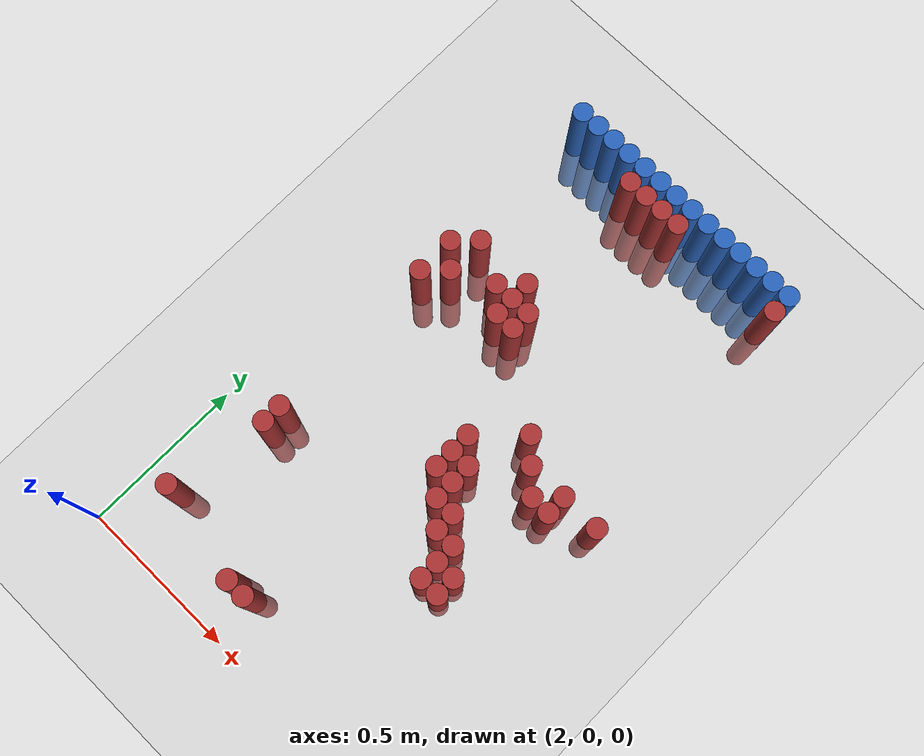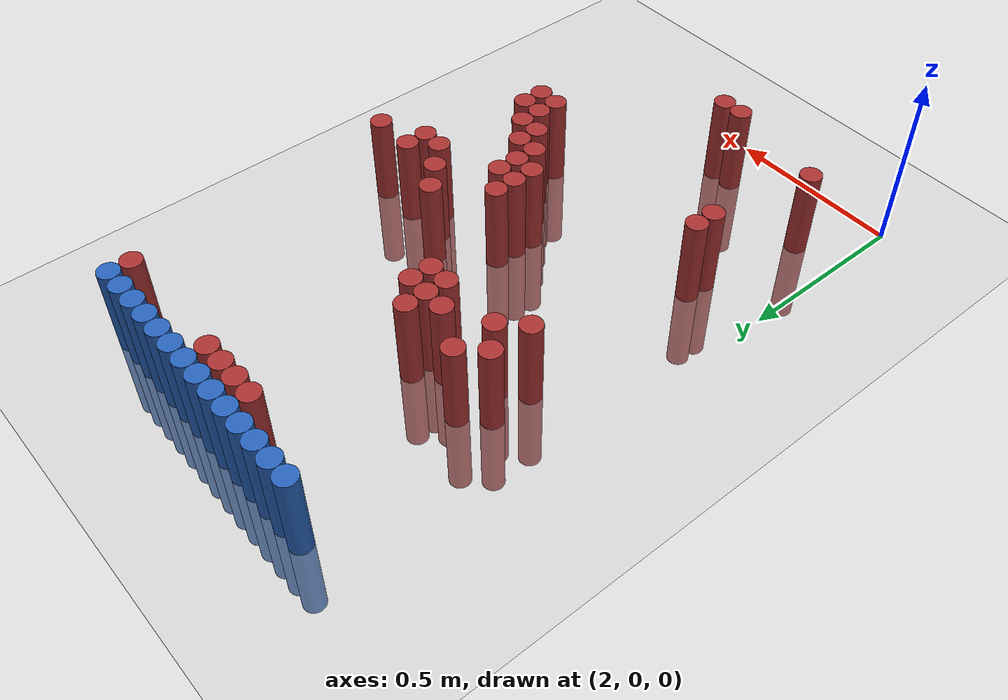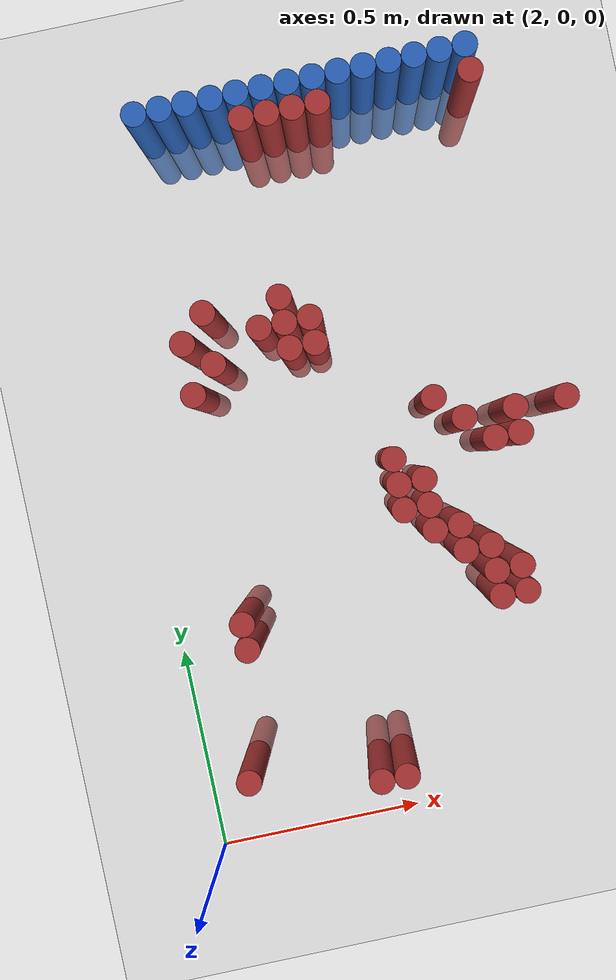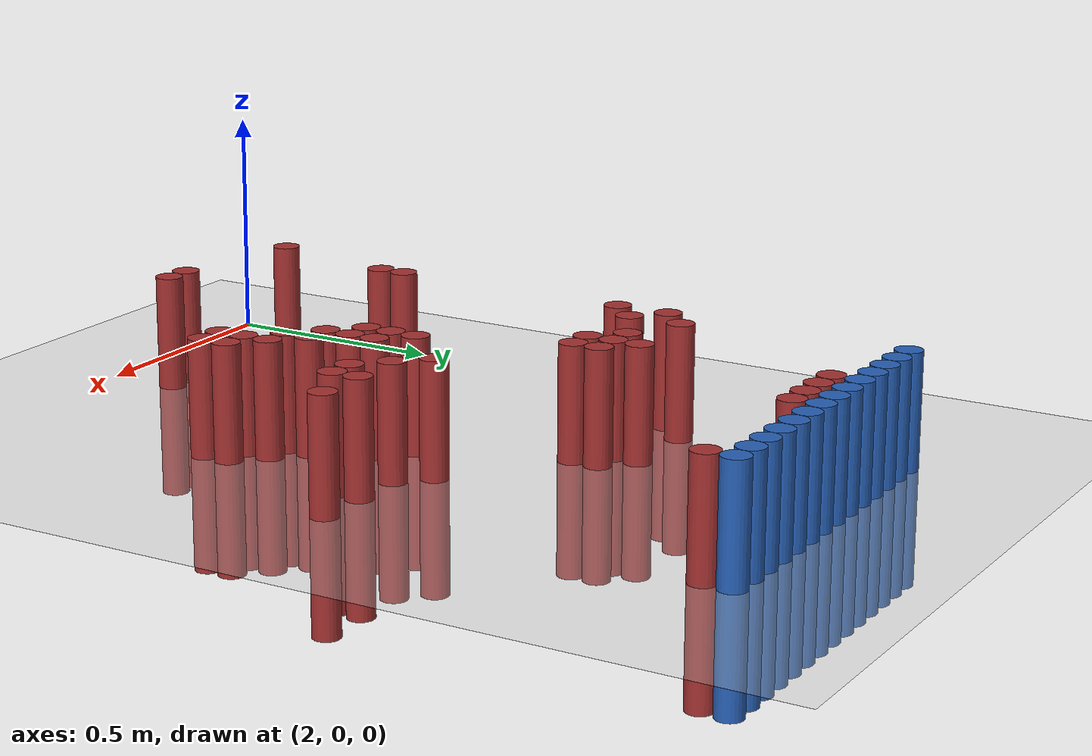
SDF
<sdf version="1.6">
 <world name="default">
  <model name="ground_plane">
   <static>1</static>
   <link name="link">
    <collision name="collision">
     <geometry><plane><normal>0 0 1</normal><size>100 100</size></plane></geometry>
     <surface><friction><ode><mu>100</mu><mu2>50</mu2></ode></friction></surface>
    </collision>
    <visual name="visual">
     <cast_shadows>0</cast_shadows>
     <geometry><plane><normal>0 0 1</normal><size>100 100</size></plane></geometry>
     <material>
      <script><uri>file://media/materials/scripts/gazebo.material</uri><name>Gazebo/Grey</name></script>
     </material>
    </visual>
   </link>
  </model>
  <model name="unit_cylinder_97">
   <static>1</static>
   <pose>2.190000 1.770000 0.000000 0.000000 0.000000 0.000000</pose>
   <link name="link">
    <inertial>
     <mass>1</mass>
     <inertia><ixx>0.145833</ixx><ixy>0</ixy><ixz>0</ixz><iyy>0.145833</iyy><iyz>0</iyz><izz>0.125</izz></inertia>
    </inertial>
    <collision name="collision">
     <geometry><cylinder><radius>0.030000</radius><length>0.5</length></cylinder></geometry>
    </collision>
    <visual name="visual">
     <geometry><cylinder><radius>0.030000</radius><length>0.5</length></cylinder></geometry>
     <material>
      <ambient>0.152000 0.379000 0.720000 1</ambient>
      <diffuse>0.152000 0.379000 0.720000 1</diffuse>
     </material>
     <material>
      <script><name>Gazebo/Grey</name><uri>file://media/materials/scripts/gazebo.material</uri></script>
     </material>
    </visual>
   </link>
  </model>
  <model name="unit_cylinder_98">
   <static>1</static>
   <pose>2.250000 1.770000 0.000000 0.000000 0.000000 0.000000</pose>
   <link name="link">
    <inertial>
     <mass>1</mass>
     <inertia><ixx>0.145833</ixx><ixy>0</ixy><ixz>0</ixz><iyy>0.145833</iyy><iyz>0</iyz><izz>0.125</izz></inertia>
    </inertial>
    <collision name="collision">
     <geometry><cylinder><radius>0.030000</radius><length>0.5</length></cylinder></geometry>
    </collision>
    <visual name="visual">
     <geometry><cylinder><radius>0.030000</radius><length>0.5</length></cylinder></geometry>
     <material>
      <ambient>0.152000 0.379000 0.720000 1</ambient>
      <diffuse>0.152000 0.379000 0.720000 1</diffuse>
     </material>
     <material>
      <script><name>Gazebo/Grey</name><uri>file://media/materials/scripts/gazebo.material</uri></script>
     </material>
    </visual>
   </link>
  </model>
  <model name="unit_cylinder_99">
   <static>1</static>
   <pose>2.310000 1.770000 0.000000 0.000000 0.000000 0.000000</pose>
   <link name="link">
    <inertial>
     <mass>1</mass>
     <inertia><ixx>0.145833</ixx><ixy>0</ixy><ixz>0</ixz><iyy>0.145833</iyy><iyz>0</iyz><izz>0.125</izz></inertia>
    </inertial>
    <collision name="collision">
     <geometry><cylinder><radius>0.030000</radius><length>0.5</length></cylinder></geometry>
    </collision>
    <visual name="visual">
     <geometry><cylinder><radius>0.030000</radius><length>0.5</length></cylinder></geometry>
     <material>
      <ambient>0.152000 0.379000 0.720000 1</ambient>
      <diffuse>0.152000 0.379000 0.720000 1</diffuse>
     </material>
     <material>
      <script><name>Gazebo/Grey</name><uri>file://media/materials/scripts/gazebo.material</uri></script>
     </material>
    </visual>
   </link>
  </model>
  <model name="unit_cylinder_100">
   <static>1</static>
   <pose>2.370000 1.770000 0.000000 0.000000 0.000000 0.000000</pose>
   <link name="link">
    <inertial>
     <mass>1</mass>
     <inertia><ixx>0.145833</ixx><ixy>0</ixy><ixz>0</ixz><iyy>0.145833</iyy><iyz>0</iyz><izz>0.125</izz></inertia>
    </inertial>
    <collision name="collision">
     <geometry><cylinder><radius>0.030000</radius><length>0.5</length></cylinder></geometry>
    </collision>
    <visual name="visual">
     <geometry><cylinder><radius>0.030000</radius><length>0.5</length></cylinder></geometry>
     <material>
      <ambient>0.152000 0.379000 0.720000 1</ambient>
      <diffuse>0.152000 0.379000 0.720000 1</diffuse>
     </material>
     <material>
      <script><name>Gazebo/Grey</name><uri>file://media/materials/scripts/gazebo.material</uri></script>
     </material>
    </visual>
   </link>
  </model>
  <model name="unit_cylinder_101">
   <static>1</static>
   <pose>2.430000 1.770000 0.000000 0.000000 0.000000 0.000000</pose>
   <link name="link">
    <inertial>
     <mass>1</mass>
     <inertia><ixx>0.145833</ixx><ixy>0</ixy><ixz>0</ixz><iyy>0.145833</iyy><iyz>0</iyz><izz>0.125</izz></inertia>
    </inertial>
    <collision name="collision">
     <geometry><cylinder><radius>0.030000</radius><length>0.5</length></cylinder></geometry>
    </collision>
    <visual name="visual">
     <geometry><cylinder><radius>0.030000</radius><length>0.5</length></cylinder></geometry>
     <material>
      <ambient>0.152000 0.379000 0.720000 1</ambient>
      <diffuse>0.152000 0.379000 0.720000 1</diffuse>
     </material>
     <material>
      <script><name>Gazebo/Grey</name><uri>file://media/materials/scripts/gazebo.material</uri></script>
     </material>
    </visual>
   </link>
  </model>
  <model name="unit_cylinder_102">
   <static>1</static>
   <pose>2.490000 1.770000 0.000000 0.000000 0.000000 0.000000</pose>
   <link name="link">
    <inertial>
     <mass>1</mass>
     <inertia><ixx>0.145833</ixx><ixy>0</ixy><ixz>0</ixz><iyy>0.145833</iyy><iyz>0</iyz><izz>0.125</izz></inertia>
    </inertial>
    <collision name="collision">
     <geometry><cylinder><radius>0.030000</radius><length>0.5</length></cylinder></geometry>
    </collision>
    <visual name="visual">
     <geometry><cylinder><radius>0.030000</radius><length>0.5</length></cylinder></geometry>
     <material>
      <ambient>0.152000 0.379000 0.720000 1</ambient>
      <diffuse>0.152000 0.379000 0.720000 1</diffuse>
     </material>
     <material>
      <script><name>Gazebo/Grey</name><uri>file://media/materials/scripts/gazebo.material</uri></script>
     </material>
    </visual>
   </link>
  </model>
  <model name="unit_cylinder_103">
   <static>1</static>
   <pose>2.550000 1.770000 0.000000 0.000000 0.000000 0.000000</pose>
   <link name="link">
    <inertial>
     <mass>1</mass>
     <inertia><ixx>0.145833</ixx><ixy>0</ixy><ixz>0</ixz><iyy>0.145833</iyy><iyz>0</iyz><izz>0.125</izz></inertia>
    </inertial>
    <collision name="collision">
     <geometry><cylinder><radius>0.030000</radius><length>0.5</length></cylinder></geometry>
    </collision>
    <visual name="visual">
     <geometry><cylinder><radius>0.030000</radius><length>0.5</length></cylinder></geometry>
     <material>
      <ambient>0.152000 0.379000 0.720000 1</ambient>
      <diffuse>0.152000 0.379000 0.720000 1</diffuse>
     </material>
     <material>
      <script><name>Gazebo/Grey</name><uri>file://media/materials/scripts/gazebo.material</uri></script>
     </material>
    </visual>
   </link>
  </model>
  <model name="unit_cylinder_104">
   <static>1</static>
   <pose>2.610000 1.770000 0.000000 0.000000 0.000000 0.000000</pose>
   <link name="link">
    <inertial>
     <mass>1</mass>
     <inertia><ixx>0.145833</ixx><ixy>0</ixy><ixz>0</ixz><iyy>0.145833</iyy><iyz>0</iyz><izz>0.125</izz></inertia>
    </inertial>
    <collision name="collision">
     <geometry><cylinder><radius>0.030000</radius><length>0.5</length></cylinder></geometry>
    </collision>
    <visual name="visual">
     <geometry><cylinder><radius>0.030000</radius><length>0.5</length></cylinder></geometry>
     <material>
      <ambient>0.152000 0.379000 0.720000 1</ambient>
      <diffuse>0.152000 0.379000 0.720000 1</diffuse>
     </material>
     <material>
      <script><name>Gazebo/Grey</name><uri>file://media/materials/scripts/gazebo.material</uri></script>
     </material>
    </visual>
   </link>
  </model>
  <model name="unit_cylinder_105">
   <static>1</static>
   <pose>2.670000 1.770000 0.000000 0.000000 0.000000 0.000000</pose>
   <link name="link">
    <inertial>
     <mass>1</mass>
     <inertia><ixx>0.145833</ixx><ixy>0</ixy><ixz>0</ixz><iyy>0.145833</iyy><iyz>0</iyz><izz>0.125</izz></inertia>
    </inertial>
    <collision name="collision">
     <geometry><cylinder><radius>0.030000</radius><length>0.5</length></cylinder></geometry>
    </collision>
    <visual name="visual">
     <geometry><cylinder><radius>0.030000</radius><length>0.5</length></cylinder></geometry>
     <material>
      <ambient>0.152000 0.379000 0.720000 1</ambient>
      <diffuse>0.152000 0.379000 0.720000 1</diffuse>
     </material>
     <material>
      <script><name>Gazebo/Grey</name><uri>file://media/materials/scripts/gazebo.material</uri></script>
     </material>
    </visual>
   </link>
  </model>
  <model name="unit_cylinder_106">
   <static>1</static>
   <pose>2.730000 1.770000 0.000000 0.000000 0.000000 0.000000</pose>
   <link name="link">
    <inertial>
     <mass>1</mass>
     <inertia><ixx>0.145833</ixx><ixy>0</ixy><ixz>0</ixz><iyy>0.145833</iyy><iyz>0</iyz><izz>0.125</izz></inertia>
    </inertial>
    <collision name="collision">
     <geometry><cylinder><radius>0.030000</radius><length>0.5</length></cylinder></geometry>
    </collision>
    <visual name="visual">
     <geometry><cylinder><radius>0.030000</radius><length>0.5</length></cylinder></geometry>
     <material>
      <ambient>0.152000 0.379000 0.720000 1</ambient>
      <diffuse>0.152000 0.379000 0.720000 1</diffuse>
     </material>
     <material>
      <script><name>Gazebo/Grey</name><uri>file://media/materials/scripts/gazebo.material</uri></script>
     </material>
    </visual>
   </link>
  </model>
  <model name="unit_cylinder_107">
   <static>1</static>
   <pose>2.790000 1.770000 0.000000 0.000000 0.000000 0.000000</pose>
   <link name="link">
    <inertial>
     <mass>1</mass>
     <inertia><ixx>0.145833</ixx><ixy>0</ixy><ixz>0</ixz><iyy>0.145833</iyy><iyz>0</iyz><izz>0.125</izz></inertia>
    </inertial>
    <collision name="collision">
     <geometry><cylinder><radius>0.030000</radius><length>0.5</length></cylinder></geometry>
    </collision>
    <visual name="visual">
     <geometry><cylinder><radius>0.030000</radius><length>0.5</length></cylinder></geometry>
     <material>
      <ambient>0.152000 0.379000 0.720000 1</ambient>
      <diffuse>0.152000 0.379000 0.720000 1</diffuse>
     </material>
     <material>
      <script><name>Gazebo/Grey</name><uri>file://media/materials/scripts/gazebo.material</uri></script>
     </material>
    </visual>
   </link>
  </model>
  <model name="unit_cylinder_108">
   <static>1</static>
   <pose>2.850000 1.770000 0.000000 0.000000 0.000000 0.000000</pose>
   <link name="link">
    <inertial>
     <mass>1</mass>
     <inertia><ixx>0.145833</ixx><ixy>0</ixy><ixz>0</ixz><iyy>0.145833</iyy><iyz>0</iyz><izz>0.125</izz></inertia>
    </inertial>
    <collision name="collision">
     <geometry><cylinder><radius>0.030000</radius><length>0.5</length></cylinder></geometry>
    </collision>
    <visual name="visual">
     <geometry><cylinder><radius>0.030000</radius><length>0.5</length></cylinder></geometry>
     <material>
      <ambient>0.152000 0.379000 0.720000 1</ambient>
      <diffuse>0.152000 0.379000 0.720000 1</diffuse>
     </material>
     <material>
      <script><name>Gazebo/Grey</name><uri>file://media/materials/scripts/gazebo.material</uri></script>
     </material>
    </visual>
   </link>
  </model>
  <model name="unit_cylinder_109">
   <static>1</static>
   <pose>2.910000 1.770000 0.000000 0.000000 0.000000 0.000000</pose>
   <link name="link">
    <inertial>
     <mass>1</mass>
     <inertia><ixx>0.145833</ixx><ixy>0</ixy><ixz>0</ixz><iyy>0.145833</iyy><iyz>0</iyz><izz>0.125</izz></inertia>
    </inertial>
    <collision name="collision">
     <geometry><cylinder><radius>0.030000</radius><length>0.5</length></cylinder></geometry>
    </collision>
    <visual name="visual">
     <geometry><cylinder><radius>0.030000</radius><length>0.5</length></cylinder></geometry>
     <material>
      <ambient>0.152000 0.379000 0.720000 1</ambient>
      <diffuse>0.152000 0.379000 0.720000 1</diffuse>
     </material>
     <material>
      <script><name>Gazebo/Grey</name><uri>file://media/materials/scripts/gazebo.material</uri></script>
     </material>
    </visual>
   </link>
  </model>
  <model name="unit_cylinder_110">
   <static>1</static>
   <pose>2.970000 1.770000 0.000000 0.000000 0.000000 0.000000</pose>
   <link name="link">
    <inertial>
     <mass>1</mass>
     <inertia><ixx>0.145833</ixx><ixy>0</ixy><ixz>0</ixz><iyy>0.145833</iyy><iyz>0</iyz><izz>0.125</izz></inertia>
    </inertial>
    <collision name="collision">
     <geometry><cylinder><radius>0.030000</radius><length>0.5</length></cylinder></geometry>
    </collision>
    <visual name="visual">
     <geometry><cylinder><radius>0.030000</radius><length>0.5</length></cylinder></geometry>
     <material>
      <ambient>0.152000 0.379000 0.720000 1</ambient>
      <diffuse>0.152000 0.379000 0.720000 1</diffuse>
     </material>
     <material>
      <script><name>Gazebo/Grey</name><uri>file://media/materials/scripts/gazebo.material</uri></script>
     </material>
    </visual>
   </link>
  </model>
  <model name="unit_cylinder_125">
   <static>1</static>
   <pose>2.430000 1.710000 0.000000 0.000000 0.000000 0.000000</pose>
   <link name="link">
    <inertial>
     <mass>1</mass>
     <inertia><ixx>0.145833</ixx><ixy>0</ixy><ixz>0</ixz><iyy>0.145833</iyy><iyz>0</iyz><izz>0.125</izz></inertia>
    </inertial>
    <collision name="collision">
     <geometry><cylinder><radius>0.030000</radius><length>0.5</length></cylinder></geometry>
    </collision>
    <visual name="visual">
     <geometry><cylinder><radius>0.030000</radius><length>0.5</length></cylinder></geometry>
     <material>
      <ambient>0.648000 0.192000 0.192000 1</ambient>
      <diffuse>0.648000 0.192000 0.192000 1</diffuse>
     </material>
     <material>
      <script><name>Gazebo/Grey</name><uri>file://media/materials/scripts/gazebo.material</uri></script>
     </material>
    </visual>
   </link>
  </model>
  <model name="unit_cylinder_126">
   <static>1</static>
   <pose>2.490000 1.710000 0.000000 0.000000 0.000000 0.000000</pose>
   <link name="link">
    <inertial>
     <mass>1</mass>
     <inertia><ixx>0.145833</ixx><ixy>0</ixy><ixz>0</ixz><iyy>0.145833</iyy><iyz>0</iyz><izz>0.125</izz></inertia>
    </inertial>
    <collision name="collision">
     <geometry><cylinder><radius>0.030000</radius><length>0.5</length></cylinder></geometry>
    </collision>
    <visual name="visual">
     <geometry><cylinder><radius>0.030000</radius><length>0.5</length></cylinder></geometry>
     <material>
      <ambient>0.648000 0.192000 0.192000 1</ambient>
      <diffuse>0.648000 0.192000 0.192000 1</diffuse>
     </material>
     <material>
      <script><name>Gazebo/Grey</name><uri>file://media/materials/scripts/gazebo.material</uri></script>
     </material>
    </visual>
   </link>
  </model>
  <model name="unit_cylinder_127">
   <static>1</static>
   <pose>2.550000 1.710000 0.000000 0.000000 0.000000 0.000000</pose>
   <link name="link">
    <inertial>
     <mass>1</mass>
     <inertia><ixx>0.145833</ixx><ixy>0</ixy><ixz>0</ixz><iyy>0.145833</iyy><iyz>0</iyz><izz>0.125</izz></inertia>
    </inertial>
    <collision name="collision">
     <geometry><cylinder><radius>0.030000</radius><length>0.5</length></cylinder></geometry>
    </collision>
    <visual name="visual">
     <geometry><cylinder><radius>0.030000</radius><length>0.5</length></cylinder></geometry>
     <material>
      <ambient>0.648000 0.192000 0.192000 1</ambient>
      <diffuse>0.648000 0.192000 0.192000 1</diffuse>
     </material>
     <material>
      <script><name>Gazebo/Grey</name><uri>file://media/materials/scripts/gazebo.material</uri></script>
     </material>
    </visual>
   </link>
  </model>
  <model name="unit_cylinder_128">
   <static>1</static>
   <pose>2.610000 1.710000 0.000000 0.000000 0.000000 0.000000</pose>
   <link name="link">
    <inertial>
     <mass>1</mass>
     <inertia><ixx>0.145833</ixx><ixy>0</ixy><ixz>0</ixz><iyy>0.145833</iyy><iyz>0</iyz><izz>0.125</izz></inertia>
    </inertial>
    <collision name="collision">
     <geometry><cylinder><radius>0.030000</radius><length>0.5</length></cylinder></geometry>
    </collision>
    <visual name="visual">
     <geometry><cylinder><radius>0.030000</radius><length>0.5</length></cylinder></geometry>
     <material>
      <ambient>0.648000 0.192000 0.192000 1</ambient>
      <diffuse>0.648000 0.192000 0.192000 1</diffuse>
     </material>
     <material>
      <script><name>Gazebo/Grey</name><uri>file://media/materials/scripts/gazebo.material</uri></script>
     </material>
    </visual>
   </link>
  </model>
  <model name="unit_cylinder_129">
   <static>1</static>
   <pose>2.970000 1.710000 0.000000 0.000000 0.000000 0.000000</pose>
   <link name="link">
    <inertial>
     <mass>1</mass>
     <inertia><ixx>0.145833</ixx><ixy>0</ixy><ixz>0</ixz><iyy>0.145833</iyy><iyz>0</iyz><izz>0.125</izz></inertia>
    </inertial>
    <collision name="collision">
     <geometry><cylinder><radius>0.030000</radius><length>0.5</length></cylinder></geometry>
    </collision>
    <visual name="visual">
     <geometry><cylinder><radius>0.030000</radius><length>0.5</length></cylinder></geometry>
     <material>
      <ambient>0.648000 0.192000 0.192000 1</ambient>
      <diffuse>0.648000 0.192000 0.192000 1</diffuse>
     </material>
     <material>
      <script><name>Gazebo/Grey</name><uri>file://media/materials/scripts/gazebo.material</uri></script>
     </material>
    </visual>
   </link>
  </model>
  <model name="unit_cylinder_136">
   <static>1</static>
   <pose>2.250000 1.290000 0.000000 0.000000 0.000000 0.000000</pose>
   <link name="link">
    <inertial>
     <mass>1</mass>
     <inertia><ixx>0.145833</ixx><ixy>0</ixy><ixz>0</ixz><iyy>0.145833</iyy><iyz>0</iyz><izz>0.125</izz></inertia>
    </inertial>
    <collision name="collision">
     <geometry><cylinder><radius>0.030000</radius><length>0.5</length></cylinder></geometry>
    </collision>
    <visual name="visual">
     <geometry><cylinder><radius>0.030000</radius><length>0.5</length></cylinder></geometry>
     <material>
      <ambient>0.648000 0.192000 0.192000 1</ambient>
      <diffuse>0.648000 0.192000 0.192000 1</diffuse>
     </material>
     <material>
      <script><name>Gazebo/Grey</name><uri>file://media/materials/scripts/gazebo.material</uri></script>
     </material>
    </visual>
   </link>
  </model>
  <model name="unit_cylinder_137">
   <static>1</static>
   <pose>2.430000 1.290000 0.000000 0.000000 0.000000 0.000000</pose>
   <link name="link">
    <inertial>
     <mass>1</mass>
     <inertia><ixx>0.145833</ixx><ixy>0</ixy><ixz>0</ixz><iyy>0.145833</iyy><iyz>0</iyz><izz>0.125</izz></inertia>
    </inertial>
    <collision name="collision">
     <geometry><cylinder><radius>0.030000</radius><length>0.5</length></cylinder></geometry>
    </collision>
    <visual name="visual">
     <geometry><cylinder><radius>0.030000</radius><length>0.5</length></cylinder></geometry>
     <material>
      <ambient>0.648000 0.192000 0.192000 1</ambient>
      <diffuse>0.648000 0.192000 0.192000 1</diffuse>
     </material>
     <material>
      <script><name>Gazebo/Grey</name><uri>file://media/materials/scripts/gazebo.material</uri></script>
     </material>
    </visual>
   </link>
  </model>
  <model name="unit_cylinder_138">
   <static>1</static>
   <pose>2.190000 1.230000 0.000000 0.000000 0.000000 0.000000</pose>
   <link name="link">
    <inertial>
     <mass>1</mass>
     <inertia><ixx>0.145833</ixx><ixy>0</ixy><ixz>0</ixz><iyy>0.145833</iyy><iyz>0</iyz><izz>0.125</izz></inertia>
    </inertial>
    <collision name="collision">
     <geometry><cylinder><radius>0.030000</radius><length>0.5</length></cylinder></geometry>
    </collision>
    <visual name="visual">
     <geometry><cylinder><radius>0.030000</radius><length>0.5</length></cylinder></geometry>
     <material>
      <ambient>0.648000 0.192000 0.192000 1</ambient>
      <diffuse>0.648000 0.192000 0.192000 1</diffuse>
     </material>
     <material>
      <script><name>Gazebo/Grey</name><uri>file://media/materials/scripts/gazebo.material</uri></script>
     </material>
    </visual>
   </link>
  </model>
  <model name="unit_cylinder_139">
   <static>1</static>
   <pose>2.370000 1.230000 0.000000 0.000000 0.000000 0.000000</pose>
   <link name="link">
    <inertial>
     <mass>1</mass>
     <inertia><ixx>0.145833</ixx><ixy>0</ixy><ixz>0</ixz><iyy>0.145833</iyy><iyz>0</iyz><izz>0.125</izz></inertia>
    </inertial>
    <collision name="collision">
     <geometry><cylinder><radius>0.030000</radius><length>0.5</length></cylinder></geometry>
    </collision>
    <visual name="visual">
     <geometry><cylinder><radius>0.030000</radius><length>0.5</length></cylinder></geometry>
     <material>
      <ambient>0.648000 0.192000 0.192000 1</ambient>
      <diffuse>0.648000 0.192000 0.192000 1</diffuse>
     </material>
     <material>
      <script><name>Gazebo/Grey</name><uri>file://media/materials/scripts/gazebo.material</uri></script>
     </material>
    </visual>
   </link>
  </model>
  <model name="unit_cylinder_140">
   <static>1</static>
   <pose>2.430000 1.230000 0.000000 0.000000 0.000000 0.000000</pose>
   <link name="link">
    <inertial>
     <mass>1</mass>
     <inertia><ixx>0.145833</ixx><ixy>0</ixy><ixz>0</ixz><iyy>0.145833</iyy><iyz>0</iyz><izz>0.125</izz></inertia>
    </inertial>
    <collision name="collision">
     <geometry><cylinder><radius>0.030000</radius><length>0.5</length></cylinder></geometry>
    </collision>
    <visual name="visual">
     <geometry><cylinder><radius>0.030000</radius><length>0.5</length></cylinder></geometry>
     <material>
      <ambient>0.648000 0.192000 0.192000 1</ambient>
      <diffuse>0.648000 0.192000 0.192000 1</diffuse>
     </material>
     <material>
      <script><name>Gazebo/Grey</name><uri>file://media/materials/scripts/gazebo.material</uri></script>
     </material>
    </visual>
   </link>
  </model>
  <model name="unit_cylinder_141">
   <static>1</static>
   <pose>2.490000 1.230000 0.000000 0.000000 0.000000 0.000000</pose>
   <link name="link">
    <inertial>
     <mass>1</mass>
     <inertia><ixx>0.145833</ixx><ixy>0</ixy><ixz>0</ixz><iyy>0.145833</iyy><iyz>0</iyz><izz>0.125</izz></inertia>
    </inertial>
    <collision name="collision">
     <geometry><cylinder><radius>0.030000</radius><length>0.5</length></cylinder></geometry>
    </collision>
    <visual name="visual">
     <geometry><cylinder><radius>0.030000</radius><length>0.5</length></cylinder></geometry>
     <material>
      <ambient>0.648000 0.192000 0.192000 1</ambient>
      <diffuse>0.648000 0.192000 0.192000 1</diffuse>
     </material>
     <material>
      <script><name>Gazebo/Grey</name><uri>file://media/materials/scripts/gazebo.material</uri></script>
     </material>
    </visual>
   </link>
  </model>
  <model name="unit_cylinder_143">
   <static>1</static>
   <pose>2.250000 1.170000 0.000000 0.000000 0.000000 0.000000</pose>
   <link name="link">
    <inertial>
     <mass>1</mass>
     <inertia><ixx>0.145833</ixx><ixy>0</ixy><ixz>0</ixz><iyy>0.145833</iyy><iyz>0</iyz><izz>0.125</izz></inertia>
    </inertial>
    <collision name="collision">
     <geometry><cylinder><radius>0.030000</radius><length>0.5</length></cylinder></geometry>
    </collision>
    <visual name="visual">
     <geometry><cylinder><radius>0.030000</radius><length>0.5</length></cylinder></geometry>
     <material>
      <ambient>0.648000 0.192000 0.192000 1</ambient>
      <diffuse>0.648000 0.192000 0.192000 1</diffuse>
     </material>
     <material>
      <script><name>Gazebo/Grey</name><uri>file://media/materials/scripts/gazebo.material</uri></script>
     </material>
    </visual>
   </link>
  </model>
  <model name="unit_cylinder_144">
   <static>1</static>
   <pose>2.430000 1.170000 0.000000 0.000000 0.000000 0.000000</pose>
   <link name="link">
    <inertial>
     <mass>1</mass>
     <inertia><ixx>0.145833</ixx><ixy>0</ixy><ixz>0</ixz><iyy>0.145833</iyy><iyz>0</iyz><izz>0.125</izz></inertia>
    </inertial>
    <collision name="collision">
     <geometry><cylinder><radius>0.030000</radius><length>0.5</length></cylinder></geometry>
    </collision>
    <visual name="visual">
     <geometry><cylinder><radius>0.030000</radius><length>0.5</length></cylinder></geometry>
     <material>
      <ambient>0.648000 0.192000 0.192000 1</ambient>
      <diffuse>0.648000 0.192000 0.192000 1</diffuse>
     </material>
     <material>
      <script><name>Gazebo/Grey</name><uri>file://media/materials/scripts/gazebo.material</uri></script>
     </material>
    </visual>
   </link>
  </model>
  <model name="unit_cylinder_145">
   <static>1</static>
   <pose>2.490000 1.170000 0.000000 0.000000 0.000000 0.000000</pose>
   <link name="link">
    <inertial>
     <mass>1</mass>
     <inertia><ixx>0.145833</ixx><ixy>0</ixy><ixz>0</ixz><iyy>0.145833</iyy><iyz>0</iyz><izz>0.125</izz></inertia>
    </inertial>
    <collision name="collision">
     <geometry><cylinder><radius>0.030000</radius><length>0.5</length></cylinder></geometry>
    </collision>
    <visual name="visual">
     <geometry><cylinder><radius>0.030000</radius><length>0.5</length></cylinder></geometry>
     <material>
      <ambient>0.648000 0.192000 0.192000 1</ambient>
      <diffuse>0.648000 0.192000 0.192000 1</diffuse>
     </material>
     <material>
      <script><name>Gazebo/Grey</name><uri>file://media/materials/scripts/gazebo.material</uri></script>
     </material>
    </visual>
   </link>
  </model>
  <model name="unit_cylinder_146">
   <static>1</static>
   <pose>2.190000 1.110000 0.000000 0.000000 0.000000 0.000000</pose>
   <link name="link">
    <inertial>
     <mass>1</mass>
     <inertia><ixx>0.145833</ixx><ixy>0</ixy><ixz>0</ixz><iyy>0.145833</iyy><iyz>0</iyz><izz>0.125</izz></inertia>
    </inertial>
    <collision name="collision">
     <geometry><cylinder><radius>0.030000</radius><length>0.5</length></cylinder></geometry>
    </collision>
    <visual name="visual">
     <geometry><cylinder><radius>0.030000</radius><length>0.5</length></cylinder></geometry>
     <material>
      <ambient>0.648000 0.192000 0.192000 1</ambient>
      <diffuse>0.648000 0.192000 0.192000 1</diffuse>
     </material>
     <material>
      <script><name>Gazebo/Grey</name><uri>file://media/materials/scripts/gazebo.material</uri></script>
     </material>
    </visual>
   </link>
  </model>
  <model name="unit_cylinder_150">
   <static>1</static>
   <pose>2.730000 0.990000 0.000000 0.000000 0.000000 0.000000</pose>
   <link name="link">
    <inertial>
     <mass>1</mass>
     <inertia><ixx>0.145833</ixx><ixy>0</ixy><ixz>0</ixz><iyy>0.145833</iyy><iyz>0</iyz><izz>0.125</izz></inertia>
    </inertial>
    <collision name="collision">
     <geometry><cylinder><radius>0.030000</radius><length>0.5</length></cylinder></geometry>
    </collision>
    <visual name="visual">
     <geometry><cylinder><radius>0.030000</radius><length>0.5</length></cylinder></geometry>
     <material>
      <ambient>0.648000 0.192000 0.192000 1</ambient>
      <diffuse>0.648000 0.192000 0.192000 1</diffuse>
     </material>
     <material>
      <script><name>Gazebo/Grey</name><uri>file://media/materials/scripts/gazebo.material</uri></script>
     </material>
    </visual>
   </link>
  </model>
  <model name="unit_cylinder_152">
   <static>1</static>
   <pose>2.790000 0.930000 0.000000 0.000000 0.000000 0.000000</pose>
   <link name="link">
    <inertial>
     <mass>1</mass>
     <inertia><ixx>0.145833</ixx><ixy>0</ixy><ixz>0</ixz><iyy>0.145833</iyy><iyz>0</iyz><izz>0.125</izz></inertia>
    </inertial>
    <collision name="collision">
     <geometry><cylinder><radius>0.030000</radius><length>0.5</length></cylinder></geometry>
    </collision>
    <visual name="visual">
     <geometry><cylinder><radius>0.030000</radius><length>0.5</length></cylinder></geometry>
     <material>
      <ambient>0.648000 0.192000 0.192000 1</ambient>
      <diffuse>0.648000 0.192000 0.192000 1</diffuse>
     </material>
     <material>
      <script><name>Gazebo/Grey</name><uri>file://media/materials/scripts/gazebo.material</uri></script>
     </material>
    </visual>
   </link>
  </model>
  <model name="unit_cylinder_153">
   <static>1</static>
   <pose>2.910000 0.930000 0.000000 0.000000 0.000000 0.000000</pose>
   <link name="link">
    <inertial>
     <mass>1</mass>
     <inertia><ixx>0.145833</ixx><ixy>0</ixy><ixz>0</ixz><iyy>0.145833</iyy><iyz>0</iyz><izz>0.125</izz></inertia>
    </inertial>
    <collision name="collision">
     <geometry><cylinder><radius>0.030000</radius><length>0.5</length></cylinder></geometry>
    </collision>
    <visual name="visual">
     <geometry><cylinder><radius>0.030000</radius><length>0.5</length></cylinder></geometry>
     <material>
      <ambient>0.648000 0.192000 0.192000 1</ambient>
      <diffuse>0.648000 0.192000 0.192000 1</diffuse>
     </material>
     <material>
      <script><name>Gazebo/Grey</name><uri>file://media/materials/scripts/gazebo.material</uri></script>
     </material>
    </visual>
   </link>
  </model>
  <model name="unit_cylinder_154">
   <static>1</static>
   <pose>3.030000 0.930000 0.000000 0.000000 0.000000 0.000000</pose>
   <link name="link">
    <inertial>
     <mass>1</mass>
     <inertia><ixx>0.145833</ixx><ixy>0</ixy><ixz>0</ixz><iyy>0.145833</iyy><iyz>0</iyz><izz>0.125</izz></inertia>
    </inertial>
    <collision name="collision">
     <geometry><cylinder><radius>0.030000</radius><length>0.5</length></cylinder></geometry>
    </collision>
    <visual name="visual">
     <geometry><cylinder><radius>0.030000</radius><length>0.5</length></cylinder></geometry>
     <material>
      <ambient>0.648000 0.192000 0.192000 1</ambient>
      <diffuse>0.648000 0.192000 0.192000 1</diffuse>
     </material>
     <material>
      <script><name>Gazebo/Grey</name><uri>file://media/materials/scripts/gazebo.material</uri></script>
     </material>
    </visual>
   </link>
  </model>
  <model name="unit_cylinder_159">
   <static>1</static>
   <pose>2.610000 0.870000 0.000000 0.000000 0.000000 0.000000</pose>
   <link name="link">
    <inertial>
     <mass>1</mass>
     <inertia><ixx>0.145833</ixx><ixy>0</ixy><ixz>0</ixz><iyy>0.145833</iyy><iyz>0</iyz><izz>0.125</izz></inertia>
    </inertial>
    <collision name="collision">
     <geometry><cylinder><radius>0.030000</radius><length>0.5</length></cylinder></geometry>
    </collision>
    <visual name="visual">
     <geometry><cylinder><radius>0.030000</radius><length>0.5</length></cylinder></geometry>
     <material>
      <ambient>0.648000 0.192000 0.192000 1</ambient>
      <diffuse>0.648000 0.192000 0.192000 1</diffuse>
     </material>
     <material>
      <script><name>Gazebo/Grey</name><uri>file://media/materials/scripts/gazebo.material</uri></script>
     </material>
    </visual>
   </link>
  </model>
  <model name="unit_cylinder_160">
   <static>1</static>
   <pose>2.850000 0.870000 0.000000 0.000000 0.000000 0.000000</pose>
   <link name="link">
    <inertial>
     <mass>1</mass>
     <inertia><ixx>0.145833</ixx><ixy>0</ixy><ixz>0</ixz><iyy>0.145833</iyy><iyz>0</iyz><izz>0.125</izz></inertia>
    </inertial>
    <collision name="collision">
     <geometry><cylinder><radius>0.030000</radius><length>0.5</length></cylinder></geometry>
    </collision>
    <visual name="visual">
     <geometry><cylinder><radius>0.030000</radius><length>0.5</length></cylinder></geometry>
     <material>
      <ambient>0.648000 0.192000 0.192000 1</ambient>
      <diffuse>0.648000 0.192000 0.192000 1</diffuse>
     </material>
     <material>
      <script><name>Gazebo/Grey</name><uri>file://media/materials/scripts/gazebo.material</uri></script>
     </material>
    </visual>
   </link>
  </model>
  <model name="unit_cylinder_161">
   <static>1</static>
   <pose>2.910000 0.870000 0.000000 0.000000 0.000000 0.000000</pose>
   <link name="link">
    <inertial>
     <mass>1</mass>
     <inertia><ixx>0.145833</ixx><ixy>0</ixy><ixz>0</ixz><iyy>0.145833</iyy><iyz>0</iyz><izz>0.125</izz></inertia>
    </inertial>
    <collision name="collision">
     <geometry><cylinder><radius>0.030000</radius><length>0.5</length></cylinder></geometry>
    </collision>
    <visual name="visual">
     <geometry><cylinder><radius>0.030000</radius><length>0.5</length></cylinder></geometry>
     <material>
      <ambient>0.648000 0.192000 0.192000 1</ambient>
      <diffuse>0.648000 0.192000 0.192000 1</diffuse>
     </material>
     <material>
      <script><name>Gazebo/Grey</name><uri>file://media/materials/scripts/gazebo.material</uri></script>
     </material>
    </visual>
   </link>
  </model>
  <model name="unit_cylinder_165">
   <static>1</static>
   <pose>2.610000 0.810000 0.000000 0.000000 0.000000 0.000000</pose>
   <link name="link">
    <inertial>
     <mass>1</mass>
     <inertia><ixx>0.145833</ixx><ixy>0</ixy><ixz>0</ixz><iyy>0.145833</iyy><iyz>0</iyz><izz>0.125</izz></inertia>
    </inertial>
    <collision name="collision">
     <geometry><cylinder><radius>0.030000</radius><length>0.5</length></cylinder></geometry>
    </collision>
    <visual name="visual">
     <geometry><cylinder><radius>0.030000</radius><length>0.5</length></cylinder></geometry>
     <material>
      <ambient>0.648000 0.192000 0.192000 1</ambient>
      <diffuse>0.648000 0.192000 0.192000 1</diffuse>
     </material>
     <material>
      <script><name>Gazebo/Grey</name><uri>file://media/materials/scripts/gazebo.material</uri></script>
     </material>
    </visual>
   </link>
  </model>
  <model name="unit_cylinder_166">
   <static>1</static>
   <pose>2.670000 0.810000 0.000000 0.000000 0.000000 0.000000</pose>
   <link name="link">
    <inertial>
     <mass>1</mass>
     <inertia><ixx>0.145833</ixx><ixy>0</ixy><ixz>0</ixz><iyy>0.145833</iyy><iyz>0</iyz><izz>0.125</izz></inertia>
    </inertial>
    <collision name="collision">
     <geometry><cylinder><radius>0.030000</radius><length>0.5</length></cylinder></geometry>
    </collision>
    <visual name="visual">
     <geometry><cylinder><radius>0.030000</radius><length>0.5</length></cylinder></geometry>
     <material>
      <ambient>0.648000 0.192000 0.192000 1</ambient>
      <diffuse>0.648000 0.192000 0.192000 1</diffuse>
     </material>
     <material>
      <script><name>Gazebo/Grey</name><uri>file://media/materials/scripts/gazebo.material</uri></script>
     </material>
    </visual>
   </link>
  </model>
  <model name="unit_cylinder_171">
   <static>1</static>
   <pose>2.610000 0.750000 0.000000 0.000000 0.000000 0.000000</pose>
   <link name="link">
    <inertial>
     <mass>1</mass>
     <inertia><ixx>0.145833</ixx><ixy>0</ixy><ixz>0</ixz><iyy>0.145833</iyy><iyz>0</iyz><izz>0.125</izz></inertia>
    </inertial>
    <collision name="collision">
     <geometry><cylinder><radius>0.030000</radius><length>0.5</length></cylinder></geometry>
    </collision>
    <visual name="visual">
     <geometry><cylinder><radius>0.030000</radius><length>0.5</length></cylinder></geometry>
     <material>
      <ambient>0.648000 0.192000 0.192000 1</ambient>
      <diffuse>0.648000 0.192000 0.192000 1</diffuse>
     </material>
     <material>
      <script><name>Gazebo/Grey</name><uri>file://media/materials/scripts/gazebo.material</uri></script>
     </material>
    </visual>
   </link>
  </model>
  <model name="unit_cylinder_172">
   <static>1</static>
   <pose>2.670000 0.750000 0.000000 0.000000 0.000000 0.000000</pose>
   <link name="link">
    <inertial>
     <mass>1</mass>
     <inertia><ixx>0.145833</ixx><ixy>0</ixy><ixz>0</ixz><iyy>0.145833</iyy><iyz>0</iyz><izz>0.125</izz></inertia>
    </inertial>
    <collision name="collision">
     <geometry><cylinder><radius>0.030000</radius><length>0.5</length></cylinder></geometry>
    </collision>
    <visual name="visual">
     <geometry><cylinder><radius>0.030000</radius><length>0.5</length></cylinder></geometry>
     <material>
      <ambient>0.648000 0.192000 0.192000 1</ambient>
      <diffuse>0.648000 0.192000 0.192000 1</diffuse>
     </material>
     <material>
      <script><name>Gazebo/Grey</name><uri>file://media/materials/scripts/gazebo.material</uri></script>
     </material>
    </visual>
   </link>
  </model>
  <model name="unit_cylinder_176">
   <static>1</static>
   <pose>2.670000 0.690000 0.000000 0.000000 0.000000 0.000000</pose>
   <link name="link">
    <inertial>
     <mass>1</mass>
     <inertia><ixx>0.145833</ixx><ixy>0</ixy><ixz>0</ixz><iyy>0.145833</iyy><iyz>0</iyz><izz>0.125</izz></inertia>
    </inertial>
    <collision name="collision">
     <geometry><cylinder><radius>0.030000</radius><length>0.5</length></cylinder></geometry>
    </collision>
    <visual name="visual">
     <geometry><cylinder><radius>0.030000</radius><length>0.5</length></cylinder></geometry>
     <material>
      <ambient>0.648000 0.192000 0.192000 1</ambient>
      <diffuse>0.648000 0.192000 0.192000 1</diffuse>
     </material>
     <material>
      <script><name>Gazebo/Grey</name><uri>file://media/materials/scripts/gazebo.material</uri></script>
     </material>
    </visual>
   </link>
  </model>
  <model name="unit_cylinder_177">
   <static>1</static>
   <pose>2.730000 0.690000 0.000000 0.000000 0.000000 0.000000</pose>
   <link name="link">
    <inertial>
     <mass>1</mass>
     <inertia><ixx>0.145833</ixx><ixy>0</ixy><ixz>0</ixz><iyy>0.145833</iyy><iyz>0</iyz><izz>0.125</izz></inertia>
    </inertial>
    <collision name="collision">
     <geometry><cylinder><radius>0.030000</radius><length>0.5</length></cylinder></geometry>
    </collision>
    <visual name="visual">
     <geometry><cylinder><radius>0.030000</radius><length>0.5</length></cylinder></geometry>
     <material>
      <ambient>0.648000 0.192000 0.192000 1</ambient>
      <diffuse>0.648000 0.192000 0.192000 1</diffuse>
     </material>
     <material>
      <script><name>Gazebo/Grey</name><uri>file://media/materials/scripts/gazebo.material</uri></script>
     </material>
    </visual>
   </link>
  </model>
  <model name="unit_cylinder_180">
   <static>1</static>
   <pose>2.730000 0.630000 0.000000 0.000000 0.000000 0.000000</pose>
   <link name="link">
    <inertial>
     <mass>1</mass>
     <inertia><ixx>0.145833</ixx><ixy>0</ixy><ixz>0</ixz><iyy>0.145833</iyy><iyz>0</iyz><izz>0.125</izz></inertia>
    </inertial>
    <collision name="collision">
     <geometry><cylinder><radius>0.030000</radius><length>0.5</length></cylinder></geometry>
    </collision>
    <visual name="visual">
     <geometry><cylinder><radius>0.030000</radius><length>0.5</length></cylinder></geometry>
     <material>
      <ambient>0.648000 0.192000 0.192000 1</ambient>
      <diffuse>0.648000 0.192000 0.192000 1</diffuse>
     </material>
     <material>
      <script><name>Gazebo/Grey</name><uri>file://media/materials/scripts/gazebo.material</uri></script>
     </material>
    </visual>
   </link>
  </model>
  <model name="unit_cylinder_181">
   <static>1</static>
   <pose>2.790000 0.630000 0.000000 0.000000 0.000000 0.000000</pose>
   <link name="link">
    <inertial>
     <mass>1</mass>
     <inertia><ixx>0.145833</ixx><ixy>0</ixy><ixz>0</ixz><iyy>0.145833</iyy><iyz>0</iyz><izz>0.125</izz></inertia>
    </inertial>
    <collision name="collision">
     <geometry><cylinder><radius>0.030000</radius><length>0.5</length></cylinder></geometry>
    </collision>
    <visual name="visual">
     <geometry><cylinder><radius>0.030000</radius><length>0.5</length></cylinder></geometry>
     <material>
      <ambient>0.648000 0.192000 0.192000 1</ambient>
      <diffuse>0.648000 0.192000 0.192000 1</diffuse>
     </material>
     <material>
      <script><name>Gazebo/Grey</name><uri>file://media/materials/scripts/gazebo.material</uri></script>
     </material>
    </visual>
   </link>
  </model>
  <model name="unit_cylinder_185">
   <static>1</static>
   <pose>2.190000 0.570000 0.000000 0.000000 0.000000 0.000000</pose>
   <link name="link">
    <inertial>
     <mass>1</mass>
     <inertia><ixx>0.145833</ixx><ixy>0</ixy><ixz>0</ixz><iyy>0.145833</iyy><iyz>0</iyz><izz>0.125</izz></inertia>
    </inertial>
    <collision name="collision">
     <geometry><cylinder><radius>0.030000</radius><length>0.5</length></cylinder></geometry>
    </collision>
    <visual name="visual">
     <geometry><cylinder><radius>0.030000</radius><length>0.5</length></cylinder></geometry>
     <material>
      <ambient>0.648000 0.192000 0.192000 1</ambient>
      <diffuse>0.648000 0.192000 0.192000 1</diffuse>
     </material>
     <material>
      <script><name>Gazebo/Grey</name><uri>file://media/materials/scripts/gazebo.material</uri></script>
     </material>
    </visual>
   </link>
  </model>
  <model name="unit_cylinder_186">
   <static>1</static>
   <pose>2.790000 0.570000 0.000000 0.000000 0.000000 0.000000</pose>
   <link name="link">
    <inertial>
     <mass>1</mass>
     <inertia><ixx>0.145833</ixx><ixy>0</ixy><ixz>0</ixz><iyy>0.145833</iyy><iyz>0</iyz><izz>0.125</izz></inertia>
    </inertial>
    <collision name="collision">
     <geometry><cylinder><radius>0.030000</radius><length>0.5</length></cylinder></geometry>
    </collision>
    <visual name="visual">
     <geometry><cylinder><radius>0.030000</radius><length>0.5</length></cylinder></geometry>
     <material>
      <ambient>0.648000 0.192000 0.192000 1</ambient>
      <diffuse>0.648000 0.192000 0.192000 1</diffuse>
     </material>
     <material>
      <script><name>Gazebo/Grey</name><uri>file://media/materials/scripts/gazebo.material</uri></script>
     </material>
    </visual>
   </link>
  </model>
  <model name="unit_cylinder_187">
   <static>1</static>
   <pose>2.850000 0.570000 0.000000 0.000000 0.000000 0.000000</pose>
   <link name="link">
    <inertial>
     <mass>1</mass>
     <inertia><ixx>0.145833</ixx><ixy>0</ixy><ixz>0</ixz><iyy>0.145833</iyy><iyz>0</iyz><izz>0.125</izz></inertia>
    </inertial>
    <collision name="collision">
     <geometry><cylinder><radius>0.030000</radius><length>0.5</length></cylinder></geometry>
    </collision>
    <visual name="visual">
     <geometry><cylinder><radius>0.030000</radius><length>0.5</length></cylinder></geometry>
     <material>
      <ambient>0.648000 0.192000 0.192000 1</ambient>
      <diffuse>0.648000 0.192000 0.192000 1</diffuse>
     </material>
     <material>
      <script><name>Gazebo/Grey</name><uri>file://media/materials/scripts/gazebo.material</uri></script>
     </material>
    </visual>
   </link>
  </model>
  <model name="unit_cylinder_190">
   <static>1</static>
   <pose>2.190000 0.510000 0.000000 0.000000 0.000000 0.000000</pose>
   <link name="link">
    <inertial>
     <mass>1</mass>
     <inertia><ixx>0.145833</ixx><ixy>0</ixy><ixz>0</ixz><iyy>0.145833</iyy><iyz>0</iyz><izz>0.125</izz></inertia>
    </inertial>
    <collision name="collision">
     <geometry><cylinder><radius>0.030000</radius><length>0.5</length></cylinder></geometry>
    </collision>
    <visual name="visual">
     <geometry><cylinder><radius>0.030000</radius><length>0.5</length></cylinder></geometry>
     <material>
      <ambient>0.648000 0.192000 0.192000 1</ambient>
      <diffuse>0.648000 0.192000 0.192000 1</diffuse>
     </material>
     <material>
      <script><name>Gazebo/Grey</name><uri>file://media/materials/scripts/gazebo.material</uri></script>
     </material>
    </visual>
   </link>
  </model>
  <model name="unit_cylinder_191">
   <static>1</static>
   <pose>2.790000 0.510000 0.000000 0.000000 0.000000 0.000000</pose>
   <link name="link">
    <inertial>
     <mass>1</mass>
     <inertia><ixx>0.145833</ixx><ixy>0</ixy><ixz>0</ixz><iyy>0.145833</iyy><iyz>0</iyz><izz>0.125</izz></inertia>
    </inertial>
    <collision name="collision">
     <geometry><cylinder><radius>0.030000</radius><length>0.5</length></cylinder></geometry>
    </collision>
    <visual name="visual">
     <geometry><cylinder><radius>0.030000</radius><length>0.5</length></cylinder></geometry>
     <material>
      <ambient>0.648000 0.192000 0.192000 1</ambient>
      <diffuse>0.648000 0.192000 0.192000 1</diffuse>
     </material>
     <material>
      <script><name>Gazebo/Grey</name><uri>file://media/materials/scripts/gazebo.material</uri></script>
     </material>
    </visual>
   </link>
  </model>
  <model name="unit_cylinder_192">
   <static>1</static>
   <pose>2.850000 0.510000 0.000000 0.000000 0.000000 0.000000</pose>
   <link name="link">
    <inertial>
     <mass>1</mass>
     <inertia><ixx>0.145833</ixx><ixy>0</ixy><ixz>0</ixz><iyy>0.145833</iyy><iyz>0</iyz><izz>0.125</izz></inertia>
    </inertial>
    <collision name="collision">
     <geometry><cylinder><radius>0.030000</radius><length>0.5</length></cylinder></geometry>
    </collision>
    <visual name="visual">
     <geometry><cylinder><radius>0.030000</radius><length>0.5</length></cylinder></geometry>
     <material>
      <ambient>0.648000 0.192000 0.192000 1</ambient>
      <diffuse>0.648000 0.192000 0.192000 1</diffuse>
     </material>
     <material>
      <script><name>Gazebo/Grey</name><uri>file://media/materials/scripts/gazebo.material</uri></script>
     </material>
    </visual>
   </link>
  </model>
  <model name="unit_cylinder_202">
   <static>1</static>
   <pose>2.130000 0.210000 0.000000 0.000000 0.000000 0.000000</pose>
   <link name="link">
    <inertial>
     <mass>1</mass>
     <inertia><ixx>0.145833</ixx><ixy>0</ixy><ixz>0</ixz><iyy>0.145833</iyy><iyz>0</iyz><izz>0.125</izz></inertia>
    </inertial>
    <collision name="collision">
     <geometry><cylinder><radius>0.030000</radius><length>0.5</length></cylinder></geometry>
    </collision>
    <visual name="visual">
     <geometry><cylinder><radius>0.030000</radius><length>0.5</length></cylinder></geometry>
     <material>
      <ambient>0.648000 0.192000 0.192000 1</ambient>
      <diffuse>0.648000 0.192000 0.192000 1</diffuse>
     </material>
     <material>
      <script><name>Gazebo/Grey</name><uri>file://media/materials/scripts/gazebo.material</uri></script>
     </material>
    </visual>
   </link>
  </model>
  <model name="unit_cylinder_210">
   <static>1</static>
   <pose>2.430000 0.150000 0.000000 0.000000 0.000000 0.000000</pose>
   <link name="link">
    <inertial>
     <mass>1</mass>
     <inertia><ixx>0.145833</ixx><ixy>0</ixy><ixz>0</ixz><iyy>0.145833</iyy><iyz>0</iyz><izz>0.125</izz></inertia>
    </inertial>
    <collision name="collision">
     <geometry><cylinder><radius>0.030000</radius><length>0.5</length></cylinder></geometry>
    </collision>
    <visual name="visual">
     <geometry><cylinder><radius>0.030000</radius><length>0.5</length></cylinder></geometry>
     <material>
      <ambient>0.648000 0.192000 0.192000 1</ambient>
      <diffuse>0.648000 0.192000 0.192000 1</diffuse>
     </material>
     <material>
      <script><name>Gazebo/Grey</name><uri>file://media/materials/scripts/gazebo.material</uri></script>
     </material>
    </visual>
   </link>
  </model>
  <model name="unit_cylinder_211">
   <static>1</static>
   <pose>2.490000 0.150000 0.000000 0.000000 0.000000 0.000000</pose>
   <link name="link">
    <inertial>
     <mass>1</mass>
     <inertia><ixx>0.145833</ixx><ixy>0</ixy><ixz>0</ixz><iyy>0.145833</iyy><iyz>0</iyz><izz>0.125</izz></inertia>
    </inertial>
    <collision name="collision">
     <geometry><cylinder><radius>0.030000</radius><length>0.5</length></cylinder></geometry>
    </collision>
    <visual name="visual">
     <geometry><cylinder><radius>0.030000</radius><length>0.5</length></cylinder></geometry>
     <material>
      <ambient>0.648000 0.192000 0.192000 1</ambient>
      <diffuse>0.648000 0.192000 0.192000 1</diffuse>
     </material>
     <material>
      <script><name>Gazebo/Grey</name><uri>file://media/materials/scripts/gazebo.material</uri></script>
     </material>
    </visual>
   </link>
  </model>
 </world>
</sdf>
